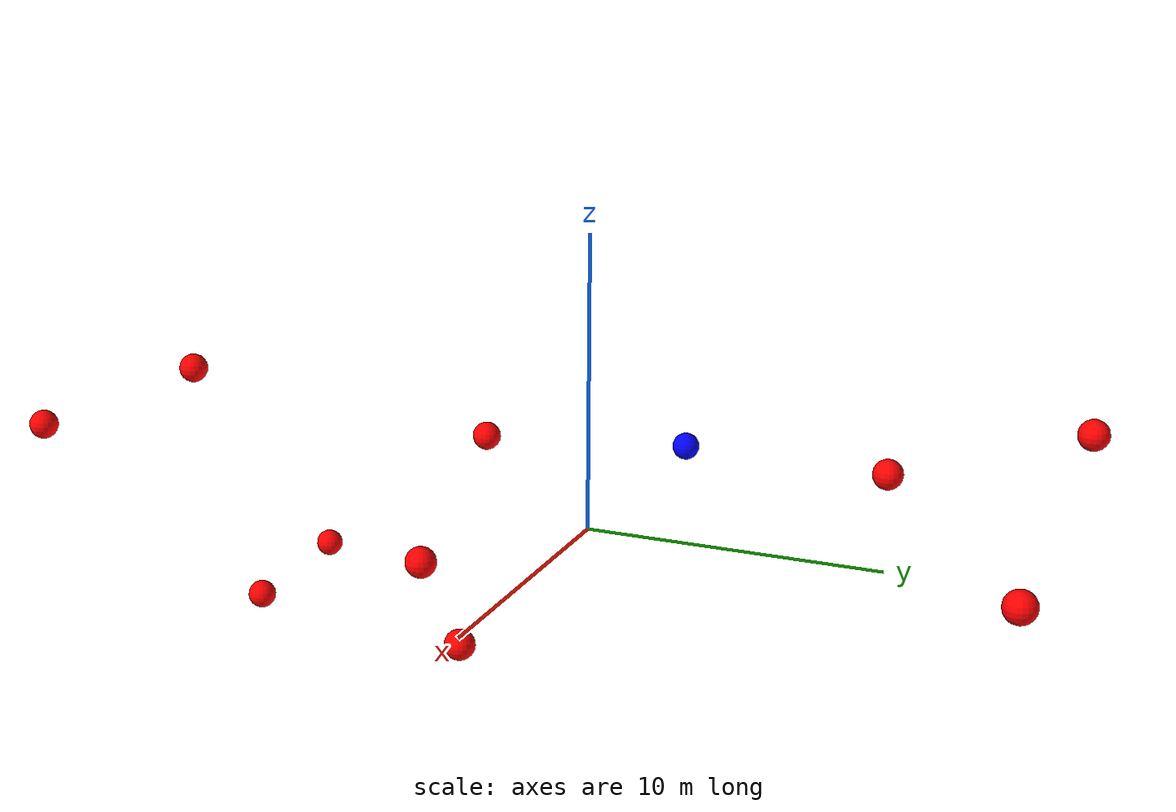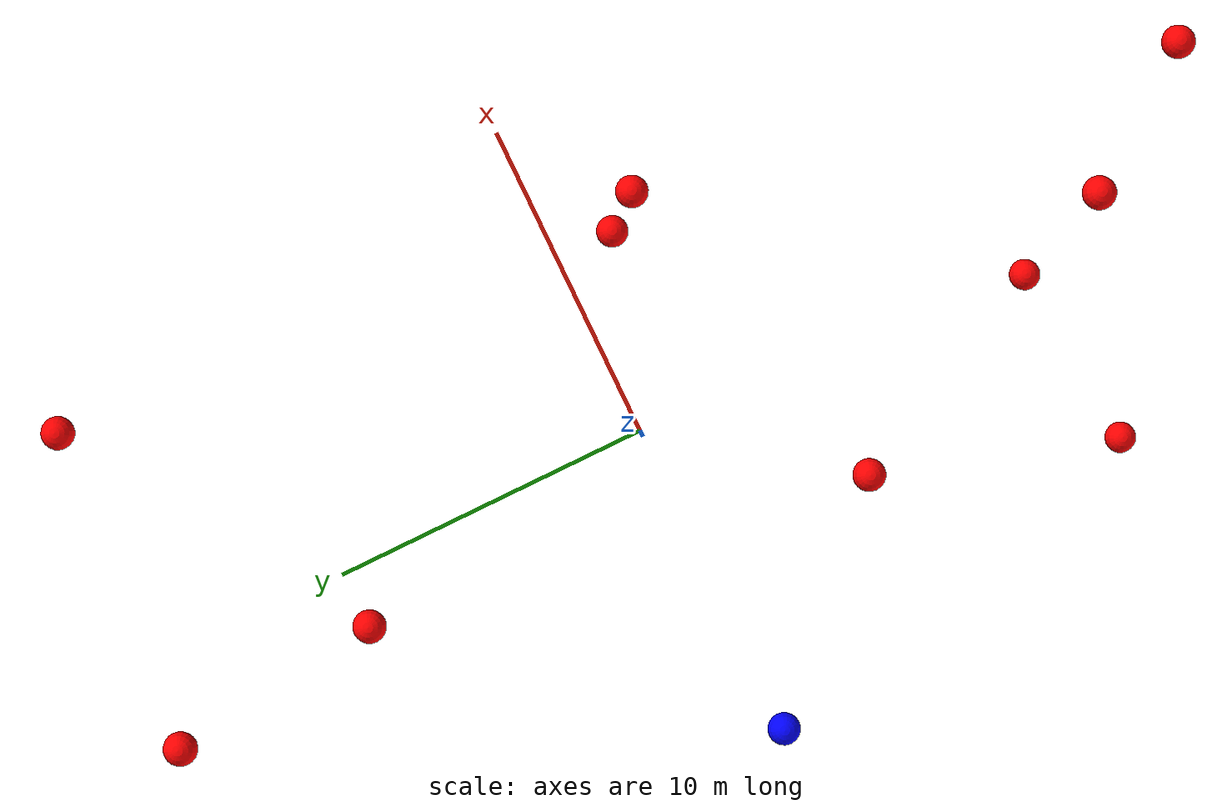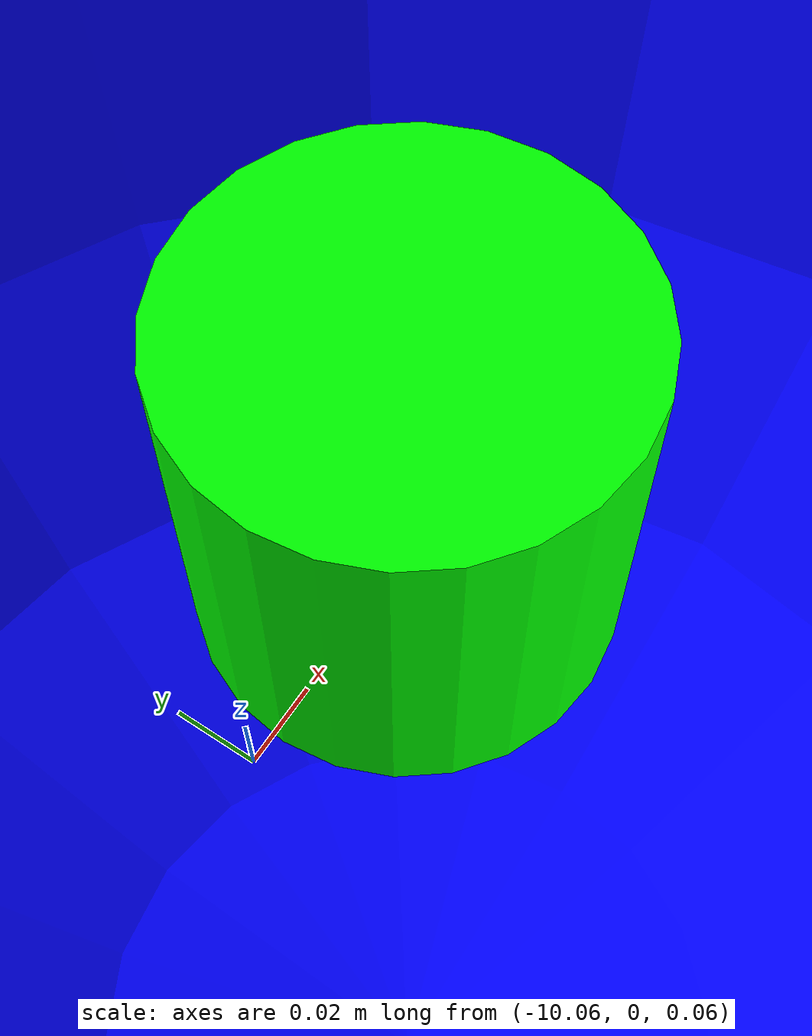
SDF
<?xml version="1.0" ?>
<sdf version="1.8">
    <world name="3d_world">
        <physics name="1ms" type="ode">
            <max_step_size>0.001</max_step_size>
            <real_time_factor>1.0</real_time_factor>
            <real_time_update_rate>1000.0</real_time_update_rate>
        </physics>
        <gravity>0 0 0</gravity>

        <plugin
            filename="gz-sim-physics-system"
            name="gz::sim::v8::systems::Physics">
        </plugin>
        <plugin
            filename="libignition-gazebo-user-commands-system.so"
            name="ignition::gazebo::systems::UserCommands">
        </plugin>
        <plugin
            filename="gz-sim-scene-broadcaster-system"
            name="gz::sim::systems::SceneBroadcaster">
        </plugin>
        <plugin
            filename="gz-sim-sensors-system"
            name="gz::sim::systems::Sensors">
            <render_engine>ogre2</render_engine>
        </plugin>

        <light type="directional" name="sun">
            <cast_shadows>true</cast_shadows>
            <pose>0 0 10 0 0 0</pose>
            <diffuse>0.8 0.8 0.8 1</diffuse>
            <specular>0.2 0.2 0.2 1</specular>
            <attenuation>
                <range>1000</range>
                <constant>0.9</constant>
                <linear>0.01</linear>
                <quadratic>0.001</quadratic>
            </attenuation>
            <direction>-0.5 0.1 -0.9</direction>
        </light>

        <!-- AGENTE -->
        <model name='agente' canonical_link='chassis'>
            <pose relative_to='world'>-10.0 0 0.0 0 0 0</pose>
            <link name='chassis'>
                <pose relative_to='__model__'>0.0 0 0.0 0 0 0</pose>
                <inertial>
                    <mass>1.14395</mass>
                    <inertia>
                        <ixx>0.095329</ixx>
                        <ixy>0</ixy>
                        <ixz>0</ixz>
                        <iyy>0.381317</iyy>
                        <iyz>0</iyz>
                        <izz>0.476646</izz>
                    </inertia>
                </inertial>
                <visual name='visual'>
                    <geometry>
                        <sphere>
                            <radius>0.5</radius>
                        </sphere>
                    </geometry>
                    <material>
                        <ambient>0.0 0.0 1.0 1</ambient>
                        <diffuse>0.0 0.0 1.0 1</diffuse>
                        <specular>0.0 0.0 1.0 1</specular>
                    </material>
                </visual>
                <collision name='collision'>
                    <geometry>
                        <sphere>
                            <radius>0.5</radius>
                        </sphere>
                    </geometry>
                </collision>
                <enable_gravity>false</enable_gravity>
            </link>

            <link name='lidar_link'>
                <pose relative_to='chassis'>0.0 0 0.1 0 0 0</pose>
                <inertial>
                    <mass>0.1</mass>
                    <inertia>
                        <ixx>0.000166667</ixx>
                        <iyy>0.000166667</iyy>
                        <izz>0.000166667</izz>
                    </inertia>
                </inertial>
                <collision name='collision'>
                    <geometry>
                        <cylinder>
                            <radius>0.05</radius>
                            <length>0.1</length>
                        </cylinder>
                    </geometry>
                </collision>
                <visual name='visual'>
                    <geometry>
                        <cylinder>
                            <radius>0.05</radius>
                            <length>0.1</length>
                        </cylinder>
                    </geometry>
                    <material>
                        <ambient>0.0 1.0 0.0 1</ambient>
                        <diffuse>0.0 1.0 0.0 1</diffuse>
                        <specular>0.0 1.0 0.0 1</specular>
                    </material>
                </visual>
                <sensor name="lidar" type="gpu_lidar">
                    <topic>scan</topic>
                    <update_rate>10</update_rate>
                    <lidar>
                        <scan>
                            <horizontal>
                                <samples>5000</samples>
                                <resolution>1</resolution>
                                <min_angle>-3.14159</min_angle>
                                <max_angle>3.14159</max_angle>
                            </horizontal>
                        </scan>
                        <range>
                            <min>0.1</min>
                            <max>10.0</max>
                            <resolution>0.01</resolution>
                        </range>
                    </lidar>
                    <visualize>true</visualize>
                    <always_on>true</always_on>
                    <update_rate>10</update_rate>
                    <pose_frame>lidar</pose_frame>
                </sensor>
                <enable_gravity>false</enable_gravity>
            </link>

            <joint name="lidar_joint" type="fixed">
                <parent>chassis</parent>
                <child>lidar_link</child>
            </joint>

            <plugin
                filename="ignition-gazebo-joint-state-publisher-system"
                name="ignition::gazebo::systems::JointStatePublisher">
            </plugin>
            <plugin
                filename="ignition-gazebo-odometry-publisher-system"
                name="ignition::gazebo::systems::OdometryPublisher">
                <dimensions>3</dimensions>
            </plugin>
            <plugin
                filename="ignition-gazebo-velocity-control-system"
                name="ignition::gazebo::systems::VelocityControl">
                <initial_linear>0.0 0 0</initial_linear>
                <initial_angular>0 0 0.0</initial_angular>
            </plugin>
            <plugin
                filename="libignition-gazebo-pose-publisher-system.so"
                name="ignition::gazebo::systems::PosePublisher">
                <topic>/agente/pose</topic>
                <frame_id>agente</frame_id>
                <update_rate>30</update_rate>
            </plugin>
        </model>

        <!-- OBSTACLE 1 -->
        <model name='obstacle_1' canonical_link='obstacle'>
            <static>false</static>
            <pose relative_to='world'>-1.65 9.61 2.68 0 0 0</pose>
            <link name='obstacle'>
                <pose relative_to='__model__'>0.0 0 0.0 0 0 0</pose>
                <visual name='visual'>
                    <geometry>
                        <sphere>
                            <radius>0.50</radius>
                        </sphere>
                    </geometry>
                    <material>
                        <ambient>1.0 0.0 0.0 1</ambient>
                        <diffuse>1.0 0.0 0.0 1</diffuse>
                        <specular>1.0 0.0 0.0 1</specular>
                    </material>
                </visual>
                <collision name='collision'>
                    <geometry>
                        <sphere>
                            <radius>0.50</radius>
                        </sphere>
                    </geometry>
                </collision>
                <enable_gravity>false</enable_gravity>
            </link>

            <plugin
                filename="ignition-gazebo-velocity-control-system"
                name="ignition::gazebo::systems::VelocityControl">
                <initial_linear>-0.29 -1.91 -0.53</initial_linear>
                <initial_angular>0 0 0</initial_angular>
            </plugin>

            <plugin
                filename="ignition-gazebo-odometry-publisher-system"
                name="ignition::gazebo::systems::OdometryPublisher">
                <dimensions>3</dimensions>
            </plugin>
        </model>

        <!-- OBSTACLE 2 -->
        <model name='obstacle_2' canonical_link='obstacle'>
            <static>false</static>
            <pose relative_to='world'>7.42 15.39 2.48 0 0 0</pose>
            <link name='obstacle'>
                <pose relative_to='__model__'>0.0 0 0.0 0 0 0</pose>
                <visual name='visual'>
                    <geometry>
                        <sphere>
                            <radius>0.50</radius>
                        </sphere>
                    </geometry>
                    <material>
                        <ambient>1.0 0.0 0.0 1</ambient>
                        <diffuse>1.0 0.0 0.0 1</diffuse>
                        <specular>1.0 0.0 0.0 1</specular>
                    </material>
                </visual>
                <collision name='collision'>
                    <geometry>
                        <sphere>
                            <radius>0.50</radius>
                        </sphere>
                    </geometry>
                </collision>
                <enable_gravity>false</enable_gravity>
            </link>

            <plugin
                filename="ignition-gazebo-velocity-control-system"
                name="ignition::gazebo::systems::VelocityControl">
                <initial_linear>-0.80 -1.81 -0.29</initial_linear>
                <initial_angular>0 0 0</initial_angular>
            </plugin>

            <plugin
                filename="ignition-gazebo-odometry-publisher-system"
                name="ignition::gazebo::systems::OdometryPublisher">
                <dimensions>3</dimensions>
            </plugin>
        </model>

        <!-- OBSTACLE 3 -->
        <model name='obstacle_3' canonical_link='obstacle'>
            <static>false</static>
            <pose relative_to='world'>-6.97 -13.79 -4.86 0 0 0</pose>
            <link name='obstacle'>
                <pose relative_to='__model__'>0.0 0 0.0 0 0 0</pose>
                <visual name='visual'>
                    <geometry>
                        <sphere>
                            <radius>0.50</radius>
                        </sphere>
                    </geometry>
                    <material>
                        <ambient>1.0 0.0 0.0 1</ambient>
                        <diffuse>1.0 0.0 0.0 1</diffuse>
                        <specular>1.0 0.0 0.0 1</specular>
                    </material>
                </visual>
                <collision name='collision'>
                    <geometry>
                        <sphere>
                            <radius>0.50</radius>
                        </sphere>
                    </geometry>
                </collision>
                <enable_gravity>false</enable_gravity>
            </link>

            <plugin
                filename="ignition-gazebo-velocity-control-system"
                name="ignition::gazebo::systems::VelocityControl">
                <initial_linear>1.37 1.37 0.48</initial_linear>
                <initial_angular>0 0 0</initial_angular>
            </plugin>

            <plugin
                filename="ignition-gazebo-odometry-publisher-system"
                name="ignition::gazebo::systems::OdometryPublisher">
                <dimensions>3</dimensions>
            </plugin>
        </model>

        <!-- OBSTACLE 4 -->
        <model name='obstacle_4' canonical_link='obstacle'>
            <static>false</static>
            <pose relative_to='world'>-2.37 15.75 4.54 0 0 0</pose>
            <link name='obstacle'>
                <pose relative_to='__model__'>0.0 0 0.0 0 0 0</pose>
                <visual name='visual'>
                    <geometry>
                        <sphere>
                            <radius>0.50</radius>
                        </sphere>
                    </geometry>
                    <material>
                        <ambient>1.0 0.0 0.0 1</ambient>
                        <diffuse>1.0 0.0 0.0 1</diffuse>
                        <specular>1.0 0.0 0.0 1</specular>
                    </material>
                </visual>
                <collision name='collision'>
                    <geometry>
                        <sphere>
                            <radius>0.50</radius>
                        </sphere>
                    </geometry>
                </collision>
                <enable_gravity>false</enable_gravity>
            </link>

            <plugin
                filename="ignition-gazebo-velocity-control-system"
                name="ignition::gazebo::systems::VelocityControl">
                <initial_linear>0.83 -1.75 -0.50</initial_linear>
                <initial_angular>0 0 0</initial_angular>
            </plugin>

            <plugin
                filename="ignition-gazebo-odometry-publisher-system"
                name="ignition::gazebo::systems::OdometryPublisher">
                <dimensions>3</dimensions>
            </plugin>
        </model>

        <!-- OBSTACLE 5 -->
        <model name='obstacle_5' canonical_link='obstacle'>
            <static>false</static>
            <pose relative_to='world'>-4.11 -5.56 1.41 0 0 0</pose>
            <link name='obstacle'>
                <pose relative_to='__model__'>0.0 0 0.0 0 0 0</pose>
                <visual name='visual'>
                    <geometry>
                        <sphere>
                            <radius>0.50</radius>
                        </sphere>
                    </geometry>
                    <material>
                        <ambient>1.0 0.0 0.0 1</ambient>
                        <diffuse>1.0 0.0 0.0 1</diffuse>
                        <specular>1.0 0.0 0.0 1</specular>
                    </material>
                </visual>
                <collision name='collision'>
                    <geometry>
                        <sphere>
                            <radius>0.50</radius>
                        </sphere>
                    </geometry>
                </collision>
                <enable_gravity>false</enable_gravity>
            </link>

            <plugin
                filename="ignition-gazebo-velocity-control-system"
                name="ignition::gazebo::systems::VelocityControl">
                <initial_linear>1.31 1.13 -0.29</initial_linear>
                <initial_angular>0 0 0</initial_angular>
            </plugin>

            <plugin
                filename="ignition-gazebo-odometry-publisher-system"
                name="ignition::gazebo::systems::OdometryPublisher">
                <dimensions>3</dimensions>
            </plugin>
        </model>

        <!-- OBSTACLE 6 -->
        <model name='obstacle_6' canonical_link='obstacle'>
            <static>false</static>
            <pose relative_to='world'>-0.93 -13.28 -4.75 0 0 0</pose>
            <link name='obstacle'>
                <pose relative_to='__model__'>0.0 0 0.0 0 0 0</pose>
                <visual name='visual'>
                    <geometry>
                        <sphere>
                            <radius>0.50</radius>
                        </sphere>
                    </geometry>
                    <material>
                        <ambient>1.0 0.0 0.0 1</ambient>
                        <diffuse>1.0 0.0 0.0 1</diffuse>
                        <specular>1.0 0.0 0.0 1</specular>
                    </material>
                </visual>
                <collision name='collision'>
                    <geometry>
                        <sphere>
                            <radius>0.50</radius>
                        </sphere>
                    </geometry>
                </collision>
                <enable_gravity>false</enable_gravity>
            </link>

            <plugin
                filename="ignition-gazebo-velocity-control-system"
                name="ignition::gazebo::systems::VelocityControl">
                <initial_linear>-0.13 1.88 0.67</initial_linear>
                <initial_angular>0 0 0</initial_angular>
            </plugin>

            <plugin
                filename="ignition-gazebo-odometry-publisher-system"
                name="ignition::gazebo::systems::OdometryPublisher">
                <dimensions>3</dimensions>
            </plugin>
        </model>

        <!-- OBSTACLE 7 -->
        <model name='obstacle_7' canonical_link='obstacle'>
            <static>false</static>
            <pose relative_to='world'>5.93 -1.92 -2.14 0 0 0</pose>
            <link name='obstacle'>
                <pose relative_to='__model__'>0.0 0 0.0 0 0 0</pose>
                <visual name='visual'>
                    <geometry>
                        <sphere>
                            <radius>0.50</radius>
                        </sphere>
                    </geometry>
                    <material>
                        <ambient>1.0 0.0 0.0 1</ambient>
                        <diffuse>1.0 0.0 0.0 1</diffuse>
                        <specular>1.0 0.0 0.0 1</specular>
                    </material>
                </visual>
                <collision name='collision'>
                    <geometry>
                        <sphere>
                            <radius>0.50</radius>
                        </sphere>
                    </geometry>
                </collision>
                <enable_gravity>false</enable_gravity>
            </link>

            <plugin
                filename="ignition-gazebo-velocity-control-system"
                name="ignition::gazebo::systems::VelocityControl">
                <initial_linear>-1.73 0.51 0.57</initial_linear>
                <initial_angular>0 0 0</initial_angular>
            </plugin>

            <plugin
                filename="ignition-gazebo-odometry-publisher-system"
                name="ignition::gazebo::systems::OdometryPublisher">
                <dimensions>3</dimensions>
            </plugin>
        </model>

        <!-- OBSTACLE 8 -->
        <model name='obstacle_8' canonical_link='obstacle'>
            <static>false</static>
            <pose relative_to='world'>6.59 -2.90 0.70 0 0 0</pose>
            <link name='obstacle'>
                <pose relative_to='__model__'>0.0 0 0.0 0 0 0</pose>
                <visual name='visual'>
                    <geometry>
                        <sphere>
                            <radius>0.50</radius>
                        </sphere>
                    </geometry>
                    <material>
                        <ambient>1.0 0.0 0.0 1</ambient>
                        <diffuse>1.0 0.0 0.0 1</diffuse>
                        <specular>1.0 0.0 0.0 1</specular>
                    </material>
                </visual>
                <collision name='collision'>
                    <geometry>
                        <sphere>
                            <radius>0.50</radius>
                        </sphere>
                    </geometry>
                </collision>
                <enable_gravity>false</enable_gravity>
            </link>

            <plugin
                filename="ignition-gazebo-velocity-control-system"
                name="ignition::gazebo::systems::VelocityControl">
                <initial_linear>-0.89 0.59 -0.14</initial_linear>
                <initial_angular>0 0 0</initial_angular>
            </plugin>

            <plugin
                filename="ignition-gazebo-odometry-publisher-system"
                name="ignition::gazebo::systems::OdometryPublisher">
                <dimensions>3</dimensions>
            </plugin>
        </model>

        <!-- OBSTACLE 9 -->
        <model name='obstacle_9' canonical_link='obstacle'>
            <static>false</static>
            <pose relative_to='world'>3.45 -19.20 2.31 0 0 0</pose>
            <link name='obstacle'>
                <pose relative_to='__model__'>0.0 0 0.0 0 0 0</pose>
                <visual name='visual'>
                    <geometry>
                        <sphere>
                            <radius>0.50</radius>
                        </sphere>
                    </geometry>
                    <material>
                        <ambient>1.0 0.0 0.0 1</ambient>
                        <diffuse>1.0 0.0 0.0 1</diffuse>
                        <specular>1.0 0.0 0.0 1</specular>
                    </material>
                </visual>
                <collision name='collision'>
                    <geometry>
                        <sphere>
                            <radius>0.50</radius>
                        </sphere>
                    </geometry>
                </collision>
                <enable_gravity>false</enable_gravity>
            </link>

            <plugin
                filename="ignition-gazebo-velocity-control-system"
                name="ignition::gazebo::systems::VelocityControl">
                <initial_linear>0.37 1.95 -0.23</initial_linear>
                <initial_angular>0 0 0</initial_angular>
            </plugin>

            <plugin
                filename="ignition-gazebo-odometry-publisher-system"
                name="ignition::gazebo::systems::OdometryPublisher">
                <dimensions>3</dimensions>
            </plugin>
        </model>

        <!-- OBSTACLE 10 -->
        <model name='obstacle_10' canonical_link='obstacle'>
            <static>false</static>
            <pose relative_to='world'>0.49 -14.83 4.09 0 0 0</pose>
            <link name='obstacle'>
                <pose relative_to='__model__'>0.0 0 0.0 0 0 0</pose>
                <visual name='visual'>
                    <geometry>
                        <sphere>
                            <radius>0.50</radius>
                        </sphere>
                    </geometry>
                    <material>
                        <ambient>1.0 0.0 0.0 1</ambient>
                        <diffuse>1.0 0.0 0.0 1</diffuse>
                        <specular>1.0 0.0 0.0 1</specular>
                    </material>
                </visual>
                <collision name='collision'>
                    <geometry>
                        <sphere>
                            <radius>0.50</radius>
                        </sphere>
                    </geometry>
                </collision>
                <enable_gravity>false</enable_gravity>
            </link>

            <plugin
                filename="ignition-gazebo-velocity-control-system"
                name="ignition::gazebo::systems::VelocityControl">
                <initial_linear>-0.09 1.93 -0.53</initial_linear>
                <initial_angular>0 0 0</initial_angular>
            </plugin>

            <plugin
                filename="ignition-gazebo-odometry-publisher-system"
                name="ignition::gazebo::systems::OdometryPublisher">
                <dimensions>3</dimensions>
            </plugin>
        </model>

    </world>
</sdf>
